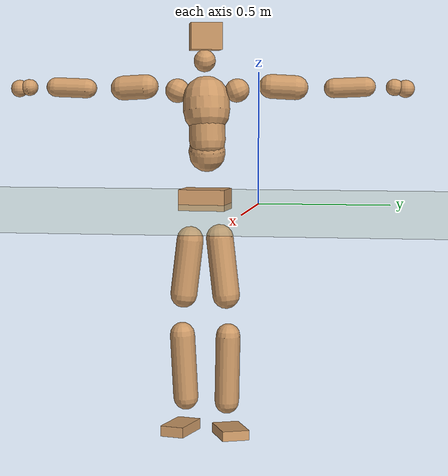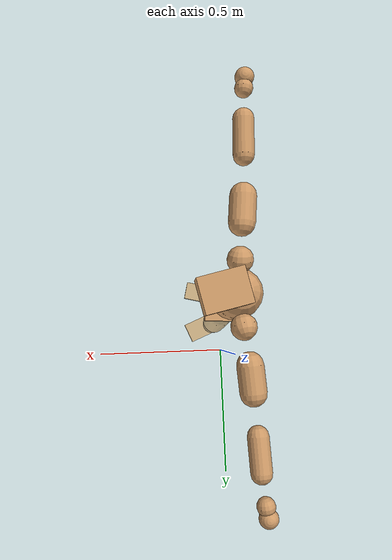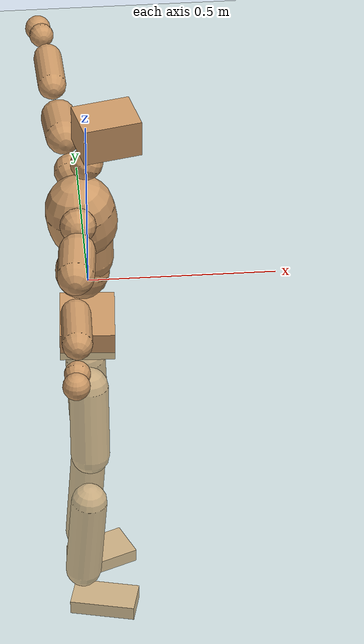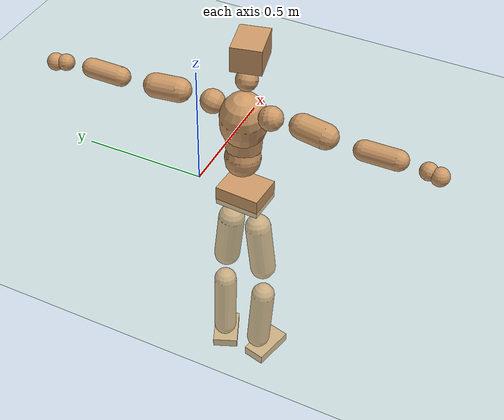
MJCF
<mujoco model="humanoid">
  <compiler coordinate="local" angle="radian"/>
  <default>
    <joint damping="0.0" armature="0.01" stiffness="0.0" limited="true"/>
    <geom conaffinity="1" condim="3" contype="7" margin="0.001" rgba="0.8 0.6 .4 1"/>
  </default>
  <asset>
    <texture type="skybox" builtin="gradient" rgb1=".4 .5 .6" rgb2="0 0 0" width="100" height="100"/>
    <texture builtin="flat" height="1278" mark="cross" markrgb="1 1 1" name="texgeom" random="0.01" rgb1="0.8 0.6 0.4" rgb2="0.8 0.6 0.4" type="cube" width="127"/>
    <texture builtin="checker" height="100" name="texplane" rgb1="0 0 0" rgb2="0.8 0.8 0.8" type="2d" width="100"/>
    <material name="MatPlane" reflectance="0.5" shininess="1" specular="1" texrepeat="60 60" texture="texplane"/>
    <material name="geom" texture="texgeom" texuniform="true"/>
  </asset>
  <worldbody>
    <light cutoff="100" diffuse="1 1 1" dir="-0 0 -1.3" directional="true" exponent="1" pos="0 0 1.3" specular=".1 .1 .1"/>
    <geom conaffinity="1" condim="3" name="floor" pos="0 0 0" rgba="0.8 0.9 0.8 1" size="100 100 .2" type="plane" material="MatPlane"/>
    <body name="Pelvis" pos="-0.0046 -0.21 0.0225">
      <freejoint name="Pelvis"/>
      <geom type="box" contype="1" conaffinity="1" density="5359.374272" pos="-0.0103 0.0006 -0.0076" size="0.0718 0.0897 0.0401" quat="0.9996 0.0000 0.0000 -0.0292" name="Pelvis"/>
      <body name="L_Hip" pos="-0.0173 0.0477 -0.0747">
        <joint name="L_Hip_x" type="hinge" pos="0 0 0" axis="1 0 0" stiffness="1600" damping="160" armature="0.02" range="-180.0000 180.0000"/>
        <joint name="L_Hip_y" type="hinge" pos="0 0 0" axis="0 1 0" stiffness="1600" damping="160" armature="0.02" range="-180.0000 180.0000"/>
        <joint name="L_Hip_z" type="hinge" pos="0 0 0" axis="0 0 1" stiffness="1600" damping="160" armature="0.02" range="-180.0000 180.0000"/>
        <geom type="capsule" contype="1" conaffinity="1" density="2040.816327" size="0.0529" fromto="0.0031 0.0097 -0.0822 0.0116 0.0359 -0.3033" name="L_Hip"/>
        <body name="L_Knee" pos="0.0147 0.0457 -0.3856">
          <joint name="L_Knee_x" type="hinge" pos="0 0 0" axis="1 0 0" stiffness="1600" damping="160" armature="0.02" range="-180.0000 180.0000"/>
          <joint name="L_Knee_y" type="hinge" pos="0 0 0" axis="0 1 0" stiffness="1600" damping="160" armature="0.02" range="-180.0000 180.0000"/>
          <joint name="L_Knee_z" type="hinge" pos="0 0 0" axis="0 0 1" stiffness="1600" damping="160" armature="0.02" range="-180.0000 180.0000"/>
          <geom type="capsule" contype="1" conaffinity="1" density="1234.567901" size="0.0472" fromto="-0.0057 -0.0022 -0.0770 -0.0250 -0.0097 -0.3404" name="L_Knee"/>
          <body name="L_Ankle" pos="-0.0307 -0.0119 -0.4174">
            <joint name="L_Ankle_x" type="hinge" pos="0 0 0" axis="1 0 0" stiffness="1600" damping="160" armature="0.02" range="-180.0000 180.0000"/>
            <joint name="L_Ankle_y" type="hinge" pos="0 0 0" axis="0 1 0" stiffness="1600" damping="160" armature="0.02" range="-180.0000 180.0000"/>
            <joint name="L_Ankle_z" type="hinge" pos="0 0 0" axis="0 0 1" stiffness="1600" damping="160" armature="0.02" range="-180.0000 180.0000"/>
            <geom type="box" contype="1" conaffinity="1" density="999.999971" pos="0.0573 0.0240 -0.0294" size="0.082 0.0525 0.019" quat="0.9804 0.0000 0.0000 0.1970" name="L_Ankle"/>
            <body name="L_Toe" pos="0.1146 0.048 -0.0589">
              <joint name="L_Toe_x" type="hinge" pos="0 0 0" axis="1 0 0" stiffness="1000" damping="100" armature="0.02" range="-180.0000 180.0000"/>
              <joint name="L_Toe_y" type="hinge" pos="0 0 0" axis="0 1 0" stiffness="1000" damping="100" armature="0.02" range="-180.0000 180.0000"/>
              <joint name="L_Toe_z" type="hinge" pos="0 0 0" axis="0 0 1" stiffness="1000" damping="100" armature="0.02" range="-180.0000 180.0000"/>
              <geom type="box" contype="1" conaffinity="1" density="7427213.113757" pos="0.0000 0.0000 0.0310" size="0.001 0.0025 0.001" quat="0.9796 0.0000 0.0000 0.2011" name="L_Toe"/>
            </body>
          </body>
        </body>
      </body>
      <body name="R_Hip" pos="-0.0127 -0.0487 -0.0837">
        <joint name="R_Hip_x" type="hinge" pos="0 0 0" axis="1 0 0" stiffness="1600" damping="160" armature="0.02" range="-180.0000 180.0000"/>
        <joint name="R_Hip_y" type="hinge" pos="0 0 0" axis="0 1 0" stiffness="1600" damping="160" armature="0.02" range="-180.0000 180.0000"/>
        <joint name="R_Hip_z" type="hinge" pos="0 0 0" axis="0 0 1" stiffness="1600" damping="160" armature="0.02" range="-180.0000 180.0000"/>
        <geom type="capsule" contype="1" conaffinity="1" density="2040.816327" size="0.052" fromto="0.0001 -0.0096 -0.0815 0.0004 -0.0349 -0.2954" name="R_Hip"/>
        <body name="R_Knee" pos="0.0005 -0.0445 -0.3769">
          <joint name="R_Knee_x" type="hinge" pos="0 0 0" axis="1 0 0" stiffness="1600" damping="160" armature="0.02" range="-180.0000 180.0000"/>
          <joint name="R_Knee_y" type="hinge" pos="0 0 0" axis="0 1 0" stiffness="1600" damping="160" armature="0.02" range="-180.0000 180.0000"/>
          <joint name="R_Knee_z" type="hinge" pos="0 0 0" axis="0 0 1" stiffness="1600" damping="160" armature="0.02" range="-180.0000 180.0000"/>
          <geom type="capsule" contype="1" conaffinity="1" density="1234.567901" size="0.0483" fromto="-0.0055 0.0031 -0.0780 -0.0235 0.0132 -0.3305" name="R_Knee"/>
          <body name="R_Ankle" pos="-0.029 0.0163 -0.4085">
            <joint name="R_Ankle_x" type="hinge" pos="0 0 0" axis="1 0 0" stiffness="1600" damping="160" armature="0.02" range="-180.0000 180.0000"/>
            <joint name="R_Ankle_y" type="hinge" pos="0 0 0" axis="0 1 0" stiffness="1600" damping="160" armature="0.02" range="-180.0000 180.0000"/>
            <joint name="R_Ankle_z" type="hinge" pos="0 0 0" axis="0 0 1" stiffness="1600" damping="160" armature="0.02" range="-180.0000 180.0000"/>
            <geom type="box" contype="1" conaffinity="1" density="999.99999" pos="0.0618 -0.0147 -0.0300" size="0.0877 0.0465 0.0203" quat="0.9932 0.0000 0.0000 -0.1168" name="R_Ankle"/>
            <body name="R_Toe" pos="0.1236 -0.0295 -0.06">
              <joint name="R_Toe_x" type="hinge" pos="0 0 0" axis="1 0 0" stiffness="1000" damping="100" armature="0.02" range="-180.0000 180.0000"/>
              <joint name="R_Toe_y" type="hinge" pos="0 0 0" axis="0 1 0" stiffness="1000" damping="100" armature="0.02" range="-180.0000 180.0000"/>
              <joint name="R_Toe_z" type="hinge" pos="0 0 0" axis="0 0 1" stiffness="1000" damping="100" armature="0.02" range="-180.0000 180.0000"/>
              <geom type="box" contype="1" conaffinity="1" density="8804515.840237" pos="0.0000 0.0000 0.0308" size="0.0009 0.0023 0.0011" quat="0.9942 0.0000 0.0000 -0.1075" name="R_Toe"/>
            </body>
          </body>
        </body>
      </body>
      <body name="Torso" pos="-0.0316 0.0046 0.1127">
        <joint name="Torso_x" type="hinge" pos="0 0 0" axis="1 0 0" stiffness="2000" damping="200" armature="0.02" range="-180.0000 180.0000"/>
        <joint name="Torso_y" type="hinge" pos="0 0 0" axis="0 1 0" stiffness="2000" damping="200" armature="0.02" range="-180.0000 180.0000"/>
        <joint name="Torso_z" type="hinge" pos="0 0 0" axis="0 0 1" stiffness="2000" damping="200" armature="0.02" range="-180.0000 180.0000"/>
        <geom type="capsule" contype="1" conaffinity="1" density="2040.816327" size="0.0703" fromto="0.0128 0.0026 0.0691 0.0103 0.0021 0.0555" name="Torso"/>
        <body name="Spine" pos="0.023 0.0047 0.1246">
          <joint name="Spine_x" type="hinge" pos="0 0 0" axis="1 0 0" stiffness="2000" damping="200" armature="0.02" range="-180.0000 180.0000"/>
          <joint name="Spine_y" type="hinge" pos="0 0 0" axis="0 1 0" stiffness="2000" damping="200" armature="0.02" range="-180.0000 180.0000"/>
          <joint name="Spine_z" type="hinge" pos="0 0 0" axis="0 0 1" stiffness="2000" damping="200" armature="0.02" range="-180.0000 180.0000"/>
          <geom type="capsule" contype="1" conaffinity="1" density="2040.816327" size="0.0696" fromto="-0.0020 -0.0017 0.0695 0.0006 0.0005 -0.0197" name="Spine"/>
          <body name="Chest" pos="-0.0014 -0.0012 0.0499">
            <joint name="Chest_x" type="hinge" pos="0 0 0" axis="1 0 0" stiffness="2000" damping="200" armature="0.02" range="-180.0000 180.0000"/>
            <joint name="Chest_y" type="hinge" pos="0 0 0" axis="0 1 0" stiffness="2000" damping="200" armature="0.02" range="-180.0000 180.0000"/>
            <joint name="Chest_z" type="hinge" pos="0 0 0" axis="0 0 1" stiffness="2000" damping="200" armature="0.02" range="-180.0000 180.0000"/>
            <geom type="capsule" contype="1" conaffinity="1" density="2040.816327" size="0.0901" fromto="-0.0148 -0.0053 0.0887 -0.0072 -0.0026 0.0430" name="Chest"/>
            <body name="Neck" pos="-0.021 -0.0128 0.1903">
              <joint name="Neck_x" type="hinge" pos="0 0 0" axis="1 0 0" stiffness="1000" damping="100" armature="0.02" range="-180.0000 180.0000"/>
              <joint name="Neck_y" type="hinge" pos="0 0 0" axis="0 1 0" stiffness="1000" damping="100" armature="0.02" range="-180.0000 180.0000"/>
              <joint name="Neck_z" type="hinge" pos="0 0 0" axis="0 0 1" stiffness="1000" damping="100" armature="0.02" range="-180.0000 180.0000"/>
              <geom type="capsule" contype="1" conaffinity="1" density="1000" size="0.0418" fromto="0.0250 0.0049 0.0439 0.0260 0.0051 0.0456" name="Neck"/>
              <body name="Head" pos="0.051 0.0099 0.0895">
                <joint name="Head_x" type="hinge" pos="0 0 0" axis="1 0 0" stiffness="1000" damping="100" armature="0.02" range="-180.0000 180.0000"/>
                <joint name="Head_y" type="hinge" pos="0 0 0" axis="0 1 0" stiffness="1000" damping="100" armature="0.02" range="-180.0000 180.0000"/>
                <joint name="Head_z" type="hinge" pos="0 0 0" axis="0 0 1" stiffness="1000" damping="100" armature="0.02" range="-180.0000 180.0000"/>
                <geom type="box" contype="1" conaffinity="1" density="2249.999921" pos="0.0265 0.0060 0.0457" size="0.0759 0.0583 0.0504" quat="0.9939 0.0000 0.0000 0.1106" name="Head"/>
              </body>
            </body>
            <body name="L_Thorax" pos="-0.0213 0.0598 0.1028">
              <joint name="L_Thorax_x" type="hinge" pos="0 0 0" axis="1 0 0" stiffness="1000" damping="100" armature="0.02" range="-180.0000 180.0000"/>
              <joint name="L_Thorax_y" type="hinge" pos="0 0 0" axis="0 1 0" stiffness="1000" damping="100" armature="0.02" range="-180.0000 180.0000"/>
              <joint name="L_Thorax_z" type="hinge" pos="0 0 0" axis="0 0 1" stiffness="1000" damping="100" armature="0.02" range="-180.0000 180.0000"/>
              <geom type="capsule" contype="1" conaffinity="1" density="1000" size="0.046" fromto="-0.0066 0.0522 0.0195 -0.0069 0.0540 0.0202" name="L_Thorax"/>
              <body name="L_Shoulder" pos="-0.0135 0.1062 0.0397">
                <joint name="L_Shoulder_x" type="hinge" pos="0 0 0" axis="1 0 0" stiffness="1000" damping="100" armature="0.02" range="-720.0000 720.0000"/>
                <joint name="L_Shoulder_y" type="hinge" pos="0 0 0" axis="0 1 0" stiffness="1000" damping="100" armature="0.02" range="-720.0000 720.0000"/>
                <joint name="L_Shoulder_z" type="hinge" pos="0 0 0" axis="0 0 1" stiffness="1000" damping="100" armature="0.02" range="-720.0000 720.0000"/>
                <geom type="capsule" contype="1" conaffinity="1" density="1000" size="0.0467" fromto="-0.0059 0.0764 -0.0042 -0.0132 0.1711 -0.0094" name="L_Shoulder"/>
                <body name="L_Elbow" pos="-0.0191 0.2475 -0.0136">
                  <joint name="L_Elbow_x" type="hinge" pos="0 0 0" axis="1 0 0" stiffness="1000" damping="100" armature="0.02" range="-720.0000 720.0000"/>
                  <joint name="L_Elbow_y" type="hinge" pos="0 0 0" axis="0 1 0" stiffness="1000" damping="100" armature="0.02" range="-720.0000 720.0000"/>
                  <joint name="L_Elbow_z" type="hinge" pos="0 0 0" axis="0 0 1" stiffness="1000" damping="100" armature="0.02" range="-720.0000 720.0000"/>
                  <geom type="capsule" contype="1" conaffinity="1" density="1000" size="0.0373" fromto="-0.0029 0.0671 0.0026 -0.0080 0.1888 0.0074" name="L_Elbow"/>
                  <body name="L_Wrist" pos="-0.0109 0.2559 0.01">
                    <joint name="L_Wrist_x" type="hinge" pos="0 0 0" axis="1 0 0" stiffness="600" damping="60" armature="0.02" range="-180.0000 180.0000"/>
                    <joint name="L_Wrist_y" type="hinge" pos="0 0 0" axis="0 1 0" stiffness="600" damping="60" armature="0.02" range="-180.0000 180.0000"/>
                    <joint name="L_Wrist_z" type="hinge" pos="0 0 0" axis="0 0 1" stiffness="600" damping="60" armature="0.02" range="-180.0000 180.0000"/>
                    <geom type="capsule" contype="1" conaffinity="1" density="1000" size="0.0321" fromto="-0.0074 0.0405 -0.0048 -0.0077 0.0424 -0.0051" name="L_Wrist"/>
                    <body name="L_Hand" pos="-0.0151 0.0829 -0.0099">
                      <joint name="L_Hand_x" type="hinge" pos="0 0 0" axis="1 0 0" stiffness="600" damping="60" armature="0.02" range="-180.0000 180.0000"/>
                      <joint name="L_Hand_y" type="hinge" pos="0 0 0" axis="0 1 0" stiffness="600" damping="60" armature="0.02" range="-180.0000 180.0000"/>
                      <joint name="L_Hand_z" type="hinge" pos="0 0 0" axis="0 0 1" stiffness="600" damping="60" armature="0.02" range="-180.0000 180.0000"/>
                      <geom type="sphere" contype="1" conaffinity="1" density="1000" size="0.0338" pos="0.0000 0.0000 0.0000" name="L_Hand"/>
                    </body>
                  </body>
                </body>
              </body>
            </body>
            <body name="R_Thorax" pos="-0.0237 -0.0705 0.102">
              <joint name="R_Thorax_x" type="hinge" pos="0 0 0" axis="1 0 0" stiffness="1000" damping="100" armature="0.02" range="-180.0000 180.0000"/>
              <joint name="R_Thorax_y" type="hinge" pos="0 0 0" axis="0 1 0" stiffness="1000" damping="100" armature="0.02" range="-180.0000 180.0000"/>
              <joint name="R_Thorax_z" type="hinge" pos="0 0 0" axis="0 0 1" stiffness="1000" damping="100" armature="0.02" range="-180.0000 180.0000"/>
              <geom type="capsule" contype="1" conaffinity="1" density="1000" size="0.0464" fromto="-0.0022 -0.0472 0.0193 -0.0023 -0.0490 0.0201" name="R_Thorax"/>
              <body name="R_Shoulder" pos="-0.0046 -0.0962 0.0394">
                <joint name="R_Shoulder_x" type="hinge" pos="0 0 0" axis="1 0 0" stiffness="1000" damping="100" armature="0.02" range="-720.0000 720.0000"/>
                <joint name="R_Shoulder_y" type="hinge" pos="0 0 0" axis="0 1 0" stiffness="1000" damping="100" armature="0.02" range="-720.0000 720.0000"/>
                <joint name="R_Shoulder_z" type="hinge" pos="0 0 0" axis="0 0 1" stiffness="1000" damping="100" armature="0.02" range="-720.0000 720.0000"/>
                <geom type="capsule" contype="1" conaffinity="1" density="1000" size="0.0474" fromto="-0.0073 -0.0769 -0.0043 -0.0163 -0.1706 -0.0095" name="R_Shoulder"/>
                <body name="R_Elbow" pos="-0.0236 -0.2475 -0.0138">
                  <joint name="R_Elbow_x" type="hinge" pos="0 0 0" axis="1 0 0" stiffness="1000" damping="100" armature="0.02" range="-720.0000 720.0000"/>
                  <joint name="R_Elbow_y" type="hinge" pos="0 0 0" axis="0 1 0" stiffness="1000" damping="100" armature="0.02" range="-720.0000 720.0000"/>
                  <joint name="R_Elbow_z" type="hinge" pos="0 0 0" axis="0 0 1" stiffness="1000" damping="100" armature="0.02" range="-720.0000 720.0000"/>
                  <geom type="capsule" contype="1" conaffinity="1" density="1000" size="0.0377" fromto="-0.0019 -0.0676 0.0027 -0.0055 -0.1932 0.0078" name="R_Elbow"/>
                  <body name="R_Wrist" pos="-0.0074 -0.2609 0.0105">
                    <joint name="R_Wrist_x" type="hinge" pos="0 0 0" axis="1 0 0" stiffness="600" damping="60" armature="0.02" range="-180.0000 180.0000"/>
                    <joint name="R_Wrist_y" type="hinge" pos="0 0 0" axis="0 1 0" stiffness="600" damping="60" armature="0.02" range="-180.0000 180.0000"/>
                    <joint name="R_Wrist_z" type="hinge" pos="0 0 0" axis="0 0 1" stiffness="600" damping="60" armature="0.02" range="-180.0000 180.0000"/>
                    <geom type="capsule" contype="1" conaffinity="1" density="1000" size="0.0323" fromto="-0.0048 -0.0408 -0.0039 -0.0051 -0.0428 -0.0041" name="R_Wrist"/>
                    <body name="R_Hand" pos="-0.0099 -0.0836 -0.008">
                      <joint name="R_Hand_x" type="hinge" pos="0 0 0" axis="1 0 0" stiffness="600" damping="60" armature="0.02" range="-180.0000 180.0000"/>
                      <joint name="R_Hand_y" type="hinge" pos="0 0 0" axis="0 1 0" stiffness="600" damping="60" armature="0.02" range="-180.0000 180.0000"/>
                      <joint name="R_Hand_z" type="hinge" pos="0 0 0" axis="0 0 1" stiffness="600" damping="60" armature="0.02" range="-180.0000 180.0000"/>
                      <geom type="sphere" contype="1" conaffinity="1" density="1000" size="0.0339" pos="0.0000 0.0000 0.0000" name="R_Hand"/>
                    </body>
                  </body>
                </body>
              </body>
            </body>
          </body>
        </body>
      </body>
    </body>
  </worldbody>
  <actuator>
    <motor name="L_Hip_x" joint="L_Hip_x" gear="500"/>
    <motor name="L_Hip_y" joint="L_Hip_y" gear="500"/>
    <motor name="L_Hip_z" joint="L_Hip_z" gear="500"/>
    <motor name="L_Knee_x" joint="L_Knee_x" gear="500"/>
    <motor name="L_Knee_y" joint="L_Knee_y" gear="500"/>
    <motor name="L_Knee_z" joint="L_Knee_z" gear="500"/>
    <motor name="L_Ankle_x" joint="L_Ankle_x" gear="500"/>
    <motor name="L_Ankle_y" joint="L_Ankle_y" gear="500"/>
    <motor name="L_Ankle_z" joint="L_Ankle_z" gear="500"/>
    <motor name="L_Toe_x" joint="L_Toe_x" gear="500"/>
    <motor name="L_Toe_y" joint="L_Toe_y" gear="500"/>
    <motor name="L_Toe_z" joint="L_Toe_z" gear="500"/>
    <motor name="R_Hip_x" joint="R_Hip_x" gear="500"/>
    <motor name="R_Hip_y" joint="R_Hip_y" gear="500"/>
    <motor name="R_Hip_z" joint="R_Hip_z" gear="500"/>
    <motor name="R_Knee_x" joint="R_Knee_x" gear="500"/>
    <motor name="R_Knee_y" joint="R_Knee_y" gear="500"/>
    <motor name="R_Knee_z" joint="R_Knee_z" gear="500"/>
    <motor name="R_Ankle_x" joint="R_Ankle_x" gear="500"/>
    <motor name="R_Ankle_y" joint="R_Ankle_y" gear="500"/>
    <motor name="R_Ankle_z" joint="R_Ankle_z" gear="500"/>
    <motor name="R_Toe_x" joint="R_Toe_x" gear="500"/>
    <motor name="R_Toe_y" joint="R_Toe_y" gear="500"/>
    <motor name="R_Toe_z" joint="R_Toe_z" gear="500"/>
    <motor name="Torso_x" joint="Torso_x" gear="500"/>
    <motor name="Torso_y" joint="Torso_y" gear="500"/>
    <motor name="Torso_z" joint="Torso_z" gear="500"/>
    <motor name="Spine_x" joint="Spine_x" gear="500"/>
    <motor name="Spine_y" joint="Spine_y" gear="500"/>
    <motor name="Spine_z" joint="Spine_z" gear="500"/>
    <motor name="Chest_x" joint="Chest_x" gear="500"/>
    <motor name="Chest_y" joint="Chest_y" gear="500"/>
    <motor name="Chest_z" joint="Chest_z" gear="500"/>
    <motor name="Neck_x" joint="Neck_x" gear="500"/>
    <motor name="Neck_y" joint="Neck_y" gear="500"/>
    <motor name="Neck_z" joint="Neck_z" gear="500"/>
    <motor name="Head_x" joint="Head_x" gear="500"/>
    <motor name="Head_y" joint="Head_y" gear="500"/>
    <motor name="Head_z" joint="Head_z" gear="500"/>
    <motor name="L_Thorax_x" joint="L_Thorax_x" gear="500"/>
    <motor name="L_Thorax_y" joint="L_Thorax_y" gear="500"/>
    <motor name="L_Thorax_z" joint="L_Thorax_z" gear="500"/>
    <motor name="L_Shoulder_x" joint="L_Shoulder_x" gear="500"/>
    <motor name="L_Shoulder_y" joint="L_Shoulder_y" gear="500"/>
    <motor name="L_Shoulder_z" joint="L_Shoulder_z" gear="500"/>
    <motor name="L_Elbow_x" joint="L_Elbow_x" gear="500"/>
    <motor name="L_Elbow_y" joint="L_Elbow_y" gear="500"/>
    <motor name="L_Elbow_z" joint="L_Elbow_z" gear="500"/>
    <motor name="L_Wrist_x" joint="L_Wrist_x" gear="500"/>
    <motor name="L_Wrist_y" joint="L_Wrist_y" gear="500"/>
    <motor name="L_Wrist_z" joint="L_Wrist_z" gear="500"/>
    <motor name="L_Hand_x" joint="L_Hand_x" gear="500"/>
    <motor name="L_Hand_y" joint="L_Hand_y" gear="500"/>
    <motor name="L_Hand_z" joint="L_Hand_z" gear="500"/>
    <motor name="R_Thorax_x" joint="R_Thorax_x" gear="500"/>
    <motor name="R_Thorax_y" joint="R_Thorax_y" gear="500"/>
    <motor name="R_Thorax_z" joint="R_Thorax_z" gear="500"/>
    <motor name="R_Shoulder_x" joint="R_Shoulder_x" gear="500"/>
    <motor name="R_Shoulder_y" joint="R_Shoulder_y" gear="500"/>
    <motor name="R_Shoulder_z" joint="R_Shoulder_z" gear="500"/>
    <motor name="R_Elbow_x" joint="R_Elbow_x" gear="500"/>
    <motor name="R_Elbow_y" joint="R_Elbow_y" gear="500"/>
    <motor name="R_Elbow_z" joint="R_Elbow_z" gear="500"/>
    <motor name="R_Wrist_x" joint="R_Wrist_x" gear="500"/>
    <motor name="R_Wrist_y" joint="R_Wrist_y" gear="500"/>
    <motor name="R_Wrist_z" joint="R_Wrist_z" gear="500"/>
    <motor name="R_Hand_x" joint="R_Hand_x" gear="500"/>
    <motor name="R_Hand_y" joint="R_Hand_y" gear="500"/>
    <motor name="R_Hand_z" joint="R_Hand_z" gear="500"/>
  </actuator>
  <contact>
    <exclude body1="Torso" body2="Chest"/>
    <exclude body1="Head" body2="Chest"/>
    <exclude body1="R_Knee" body2="R_Toe"/>
    <exclude body1="R_Knee" body2="L_Ankle"/>
    <exclude body1="R_Knee" body2="L_Toe"/>
    <exclude body1="L_Knee" body2="L_Toe"/>
    <exclude body1="L_Knee" body2="R_Ankle"/>
    <exclude body1="L_Knee" body2="R_Toe"/>
    <exclude body1="L_Shoulder" body2="Chest"/>
    <exclude body1="R_Shoulder" body2="Chest"/>
  </contact>
  <sensor/>
  <size njmax="700" nconmax="700"/>
</mujoco>
